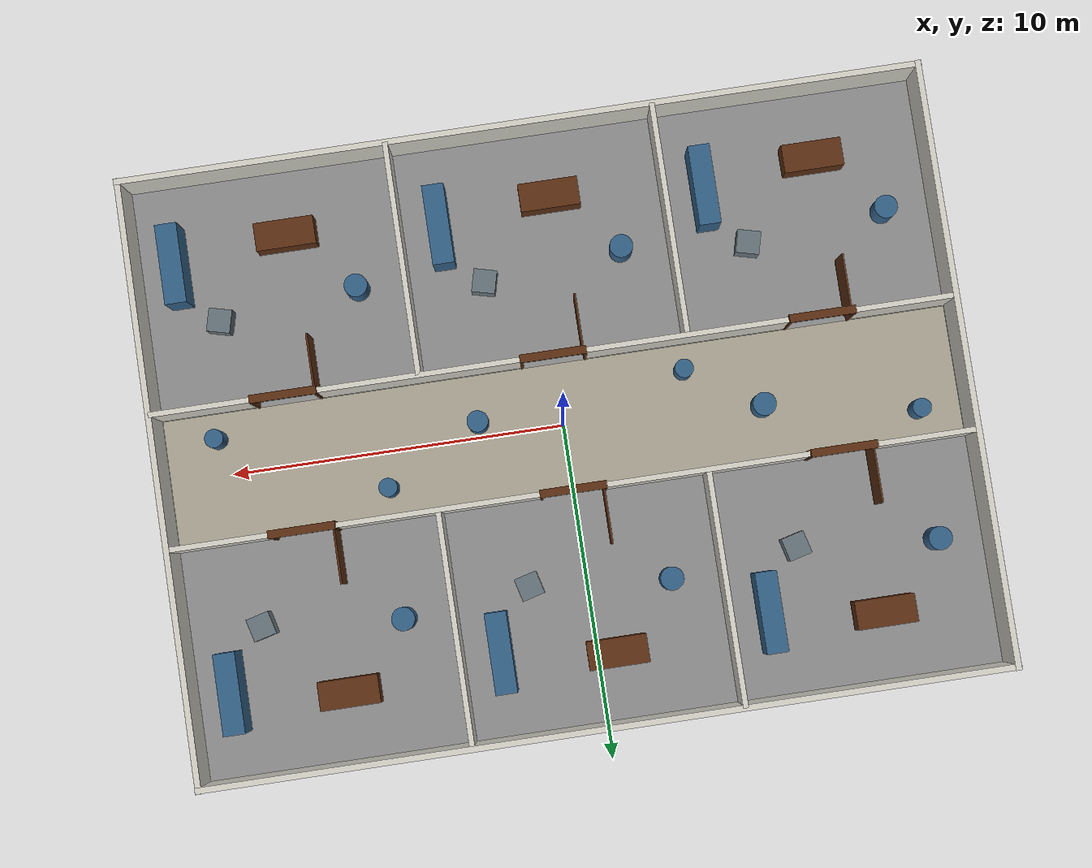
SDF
<?xml version='1.0' encoding='utf-8'?>
<sdf version="1.6">
  <world name="v550_rooms">
    <gravity>0 0 -9.8</gravity>
    <physics type="ode">
      <max_step_size>0.001</max_step_size>
      <real_time_update_rate>1000</real_time_update_rate>
    </physics>
    <scene>
      <ambient>0.65 0.65 0.65 1</ambient>
      <background>0.70 0.73 0.77 1</background>
      <shadows>false</shadows>
    </scene>
    <light name="sun" type="directional">
      <pose>0 0 15 0 0 0</pose>
      <diffuse>0.8 0.8 0.8 1</diffuse>
      <direction>-0.3 0.2 -1</direction>
      <cast_shadows>false</cast_shadows>
    </light>
    <gui>
      <camera name="user_camera">
        <pose>0 0 36 0 1.5707963267948966 1.5707963267948966</pose>
        <view_controller>orbit</view_controller>
      </camera>
    </gui>
    <model name="floor">
      <static>true</static>
      <pose>0 0 -0.05 0 0 0.0</pose>
      <link name="link">
        <collision name="collision">
          <geometry>
            <box>
              <size>24.4 18.4 0.1</size>
            </box>
          </geometry>
        </collision>
        <visual name="visual">
          <geometry>
            <box>
              <size>24.4 18.4 0.1</size>
            </box>
          </geometry>
          <material>
            <ambient>0.55 0.55 0.55 1</ambient>
            <diffuse>0.55 0.55 0.55 1</diffuse>
          </material>
        </visual>
      </link>
    </model>
    <model name="corridor_floor_marking">
      <static>true</static>
      <pose>0 0 0.001 0 0 0.0</pose>
      <link name="link">
        <visual name="visual">
          <geometry>
            <box>
              <size>23.8 3.8 0.002</size>
            </box>
          </geometry>
          <material>
            <ambient>0.66 0.64 0.57 1</ambient>
            <diffuse>0.66 0.64 0.57 1</diffuse>
          </material>
        </visual>
      </link>
    </model>
    <model name="outer_north">
      <static>true</static>
      <pose>0 9 0.75 0 0 0.0</pose>
      <link name="link">
        <collision name="collision">
          <geometry>
            <box>
              <size>24.2 0.18 1.5</size>
            </box>
          </geometry>
        </collision>
        <visual name="visual">
          <geometry>
            <box>
              <size>24.2 0.18 1.5</size>
            </box>
          </geometry>
          <material>
            <ambient>0.83 0.82 0.78 1</ambient>
            <diffuse>0.83 0.82 0.78 1</diffuse>
          </material>
        </visual>
      </link>
    </model>
    <model name="outer_south">
      <static>true</static>
      <pose>0 -9 0.75 0 0 0.0</pose>
      <link name="link">
        <collision name="collision">
          <geometry>
            <box>
              <size>24.2 0.18 1.5</size>
            </box>
          </geometry>
        </collision>
        <visual name="visual">
          <geometry>
            <box>
              <size>24.2 0.18 1.5</size>
            </box>
          </geometry>
          <material>
            <ambient>0.83 0.82 0.78 1</ambient>
            <diffuse>0.83 0.82 0.78 1</diffuse>
          </material>
        </visual>
      </link>
    </model>
    <model name="outer_west">
      <static>true</static>
      <pose>-12 0 0.75 0 0 0.0</pose>
      <link name="link">
        <collision name="collision">
          <geometry>
            <box>
              <size>0.18 18.2 1.5</size>
            </box>
          </geometry>
        </collision>
        <visual name="visual">
          <geometry>
            <box>
              <size>0.18 18.2 1.5</size>
            </box>
          </geometry>
          <material>
            <ambient>0.83 0.82 0.78 1</ambient>
            <diffuse>0.83 0.82 0.78 1</diffuse>
          </material>
        </visual>
      </link>
    </model>
    <model name="outer_east">
      <static>true</static>
      <pose>12 0 0.75 0 0 0.0</pose>
      <link name="link">
        <collision name="collision">
          <geometry>
            <box>
              <size>0.18 18.2 1.5</size>
            </box>
          </geometry>
        </collision>
        <visual name="visual">
          <geometry>
            <box>
              <size>0.18 18.2 1.5</size>
            </box>
          </geometry>
          <material>
            <ambient>0.83 0.82 0.78 1</ambient>
            <diffuse>0.83 0.82 0.78 1</diffuse>
          </material>
        </visual>
      </link>
    </model>
    <model name="north_front_0">
      <static>true</static>
      <pose>-10.475 2 0.75 0 0 0.0</pose>
      <link name="link">
        <collision name="collision">
          <geometry>
            <box>
              <size>3.0500000000000007 0.16 1.5</size>
            </box>
          </geometry>
        </collision>
        <visual name="visual">
          <geometry>
            <box>
              <size>3.0500000000000007 0.16 1.5</size>
            </box>
          </geometry>
          <material>
            <ambient>0.83 0.82 0.78 1</ambient>
            <diffuse>0.83 0.82 0.78 1</diffuse>
          </material>
        </visual>
      </link>
    </model>
    <model name="north_front_1">
      <static>true</static>
      <pose>-4.0 2 0.75 0 0 0.0</pose>
      <link name="link">
        <collision name="collision">
          <geometry>
            <box>
              <size>6.1 0.16 1.5</size>
            </box>
          </geometry>
        </collision>
        <visual name="visual">
          <geometry>
            <box>
              <size>6.1 0.16 1.5</size>
            </box>
          </geometry>
          <material>
            <ambient>0.83 0.82 0.78 1</ambient>
            <diffuse>0.83 0.82 0.78 1</diffuse>
          </material>
        </visual>
      </link>
    </model>
    <model name="north_front_2">
      <static>true</static>
      <pose>4.0 2 0.75 0 0 0.0</pose>
      <link name="link">
        <collision name="collision">
          <geometry>
            <box>
              <size>6.1 0.16 1.5</size>
            </box>
          </geometry>
        </collision>
        <visual name="visual">
          <geometry>
            <box>
              <size>6.1 0.16 1.5</size>
            </box>
          </geometry>
          <material>
            <ambient>0.83 0.82 0.78 1</ambient>
            <diffuse>0.83 0.82 0.78 1</diffuse>
          </material>
        </visual>
      </link>
    </model>
    <model name="north_front_3">
      <static>true</static>
      <pose>10.475 2 0.75 0 0 0.0</pose>
      <link name="link">
        <collision name="collision">
          <geometry>
            <box>
              <size>3.0500000000000007 0.16 1.5</size>
            </box>
          </geometry>
        </collision>
        <visual name="visual">
          <geometry>
            <box>
              <size>3.0500000000000007 0.16 1.5</size>
            </box>
          </geometry>
          <material>
            <ambient>0.83 0.82 0.78 1</ambient>
            <diffuse>0.83 0.82 0.78 1</diffuse>
          </material>
        </visual>
      </link>
    </model>
    <model name="north_partition_-4">
      <static>true</static>
      <pose>-4 5.5 0.75 0 0 0.0</pose>
      <link name="link">
        <collision name="collision">
          <geometry>
            <box>
              <size>0.16 7 1.5</size>
            </box>
          </geometry>
        </collision>
        <visual name="visual">
          <geometry>
            <box>
              <size>0.16 7 1.5</size>
            </box>
          </geometry>
          <material>
            <ambient>0.83 0.82 0.78 1</ambient>
            <diffuse>0.83 0.82 0.78 1</diffuse>
          </material>
        </visual>
      </link>
    </model>
    <model name="north_partition_4">
      <static>true</static>
      <pose>4 5.5 0.75 0 0 0.0</pose>
      <link name="link">
        <collision name="collision">
          <geometry>
            <box>
              <size>0.16 7 1.5</size>
            </box>
          </geometry>
        </collision>
        <visual name="visual">
          <geometry>
            <box>
              <size>0.16 7 1.5</size>
            </box>
          </geometry>
          <material>
            <ambient>0.83 0.82 0.78 1</ambient>
            <diffuse>0.83 0.82 0.78 1</diffuse>
          </material>
        </visual>
      </link>
    </model>
    <model name="north_door_0_open_leaf">
      <static>true</static>
      <pose>-8.9 2.88 0.675 0 0 0.0</pose>
      <link name="link">
        <collision name="collision">
          <geometry>
            <box>
              <size>0.055 1.7 1.35</size>
            </box>
          </geometry>
        </collision>
        <visual name="visual">
          <geometry>
            <box>
              <size>0.055 1.7 1.35</size>
            </box>
          </geometry>
          <material>
            <ambient>0.36 0.18 0.07 1</ambient>
            <diffuse>0.36 0.18 0.07 1</diffuse>
          </material>
        </visual>
      </link>
    </model>
    <model name="north_door_0_jamb_0">
      <static>true</static>
      <pose>-8.95 2 0.8 0 0 0.0</pose>
      <link name="link">
        <collision name="collision">
          <geometry>
            <box>
              <size>0.08 0.24 1.6</size>
            </box>
          </geometry>
        </collision>
        <visual name="visual">
          <geometry>
            <box>
              <size>0.08 0.24 1.6</size>
            </box>
          </geometry>
          <material>
            <ambient>0.36 0.18 0.07 1</ambient>
            <diffuse>0.36 0.18 0.07 1</diffuse>
          </material>
        </visual>
      </link>
    </model>
    <model name="north_door_0_jamb_1">
      <static>true</static>
      <pose>-7.05 2 0.8 0 0 0.0</pose>
      <link name="link">
        <collision name="collision">
          <geometry>
            <box>
              <size>0.08 0.24 1.6</size>
            </box>
          </geometry>
        </collision>
        <visual name="visual">
          <geometry>
            <box>
              <size>0.08 0.24 1.6</size>
            </box>
          </geometry>
          <material>
            <ambient>0.36 0.18 0.07 1</ambient>
            <diffuse>0.36 0.18 0.07 1</diffuse>
          </material>
        </visual>
      </link>
    </model>
    <model name="north_door_0_lintel">
      <static>true</static>
      <pose>-8 2 1.6 0 0 0.0</pose>
      <link name="link">
        <collision name="collision">
          <geometry>
            <box>
              <size>1.98 0.24 0.12</size>
            </box>
          </geometry>
        </collision>
        <visual name="visual">
          <geometry>
            <box>
              <size>1.98 0.24 0.12</size>
            </box>
          </geometry>
          <material>
            <ambient>0.36 0.18 0.07 1</ambient>
            <diffuse>0.36 0.18 0.07 1</diffuse>
          </material>
        </visual>
      </link>
    </model>
    <model name="north_room_0_cabinet">
      <static>true</static>
      <pose>-5.2 6.4 0.625 0 0 0.0</pose>
      <link name="link">
        <collision name="collision">
          <geometry>
            <box>
              <size>0.65 2.4 1.25</size>
            </box>
          </geometry>
        </collision>
        <visual name="visual">
          <geometry>
            <box>
              <size>0.65 2.4 1.25</size>
            </box>
          </geometry>
          <material>
            <ambient>0.20 0.38 0.53 1</ambient>
            <diffuse>0.20 0.38 0.53 1</diffuse>
          </material>
        </visual>
      </link>
    </model>
    <model name="north_room_0_desk">
      <static>true</static>
      <pose>-8.6 6.9 0.375 0 0 0.0</pose>
      <link name="link">
        <collision name="collision">
          <geometry>
            <box>
              <size>1.8 0.85 0.75</size>
            </box>
          </geometry>
        </collision>
        <visual name="visual">
          <geometry>
            <box>
              <size>1.8 0.85 0.75</size>
            </box>
          </geometry>
          <material>
            <ambient>0.36 0.18 0.07 1</ambient>
            <diffuse>0.36 0.18 0.07 1</diffuse>
          </material>
        </visual>
      </link>
    </model>
    <model name="north_room_0_crate">
      <static>true</static>
      <pose>-6.3 4.6 0.325 0 0 0.25</pose>
      <link name="link">
        <collision name="collision">
          <geometry>
            <box>
              <size>0.7 0.7 0.65</size>
            </box>
          </geometry>
        </collision>
        <visual name="visual">
          <geometry>
            <box>
              <size>0.7 0.7 0.65</size>
            </box>
          </geometry>
          <material>
            <ambient>0.40 0.45 0.48 1</ambient>
            <diffuse>0.40 0.45 0.48 1</diffuse>
          </material>
        </visual>
      </link>
    </model>
    <model name="north_room_0_barrel">
      <static>true</static>
      <pose>-10.5 5.0 0.45 0 0 0.0</pose>
      <link name="link">
        <collision name="collision">
          <geometry>
            <cylinder>
              <radius>0.35</radius>
              <length>0.9</length>
            </cylinder>
          </geometry>
        </collision>
        <visual name="visual">
          <geometry>
            <cylinder>
              <radius>0.35</radius>
              <length>0.9</length>
            </cylinder>
          </geometry>
          <material>
            <ambient>0.20 0.38 0.53 1</ambient>
            <diffuse>0.20 0.38 0.53 1</diffuse>
          </material>
        </visual>
      </link>
    </model>
    <model name="north_door_1_open_leaf">
      <static>true</static>
      <pose>-0.9 2.88 0.675 0 0 0.0</pose>
      <link name="link">
        <collision name="collision">
          <geometry>
            <box>
              <size>0.055 1.7 1.35</size>
            </box>
          </geometry>
        </collision>
        <visual name="visual">
          <geometry>
            <box>
              <size>0.055 1.7 1.35</size>
            </box>
          </geometry>
          <material>
            <ambient>0.36 0.18 0.07 1</ambient>
            <diffuse>0.36 0.18 0.07 1</diffuse>
          </material>
        </visual>
      </link>
    </model>
    <model name="north_door_1_jamb_0">
      <static>true</static>
      <pose>-0.95 2 0.8 0 0 0.0</pose>
      <link name="link">
        <collision name="collision">
          <geometry>
            <box>
              <size>0.08 0.24 1.6</size>
            </box>
          </geometry>
        </collision>
        <visual name="visual">
          <geometry>
            <box>
              <size>0.08 0.24 1.6</size>
            </box>
          </geometry>
          <material>
            <ambient>0.36 0.18 0.07 1</ambient>
            <diffuse>0.36 0.18 0.07 1</diffuse>
          </material>
        </visual>
      </link>
    </model>
    <model name="north_door_1_jamb_1">
      <static>true</static>
      <pose>0.95 2 0.8 0 0 0.0</pose>
      <link name="link">
        <collision name="collision">
          <geometry>
            <box>
              <size>0.08 0.24 1.6</size>
            </box>
          </geometry>
        </collision>
        <visual name="visual">
          <geometry>
            <box>
              <size>0.08 0.24 1.6</size>
            </box>
          </geometry>
          <material>
            <ambient>0.36 0.18 0.07 1</ambient>
            <diffuse>0.36 0.18 0.07 1</diffuse>
          </material>
        </visual>
      </link>
    </model>
    <model name="north_door_1_lintel">
      <static>true</static>
      <pose>0 2 1.6 0 0 0.0</pose>
      <link name="link">
        <collision name="collision">
          <geometry>
            <box>
              <size>1.98 0.24 0.12</size>
            </box>
          </geometry>
        </collision>
        <visual name="visual">
          <geometry>
            <box>
              <size>1.98 0.24 0.12</size>
            </box>
          </geometry>
          <material>
            <ambient>0.36 0.18 0.07 1</ambient>
            <diffuse>0.36 0.18 0.07 1</diffuse>
          </material>
        </visual>
      </link>
    </model>
    <model name="north_room_1_cabinet">
      <static>true</static>
      <pose>2.8 6.4 0.625 0 0 0.0</pose>
      <link name="link">
        <collision name="collision">
          <geometry>
            <box>
              <size>0.65 2.4 1.25</size>
            </box>
          </geometry>
        </collision>
        <visual name="visual">
          <geometry>
            <box>
              <size>0.65 2.4 1.25</size>
            </box>
          </geometry>
          <material>
            <ambient>0.20 0.38 0.53 1</ambient>
            <diffuse>0.20 0.38 0.53 1</diffuse>
          </material>
        </visual>
      </link>
    </model>
    <model name="north_room_1_desk">
      <static>true</static>
      <pose>-0.6 6.9 0.375 0 0 0.0</pose>
      <link name="link">
        <collision name="collision">
          <geometry>
            <box>
              <size>1.8 0.85 0.75</size>
            </box>
          </geometry>
        </collision>
        <visual name="visual">
          <geometry>
            <box>
              <size>1.8 0.85 0.75</size>
            </box>
          </geometry>
          <material>
            <ambient>0.36 0.18 0.07 1</ambient>
            <diffuse>0.36 0.18 0.07 1</diffuse>
          </material>
        </visual>
      </link>
    </model>
    <model name="north_room_1_crate">
      <static>true</static>
      <pose>1.7 4.6 0.325 0 0 0.25</pose>
      <link name="link">
        <collision name="collision">
          <geometry>
            <box>
              <size>0.7 0.7 0.65</size>
            </box>
          </geometry>
        </collision>
        <visual name="visual">
          <geometry>
            <box>
              <size>0.7 0.7 0.65</size>
            </box>
          </geometry>
          <material>
            <ambient>0.40 0.45 0.48 1</ambient>
            <diffuse>0.40 0.45 0.48 1</diffuse>
          </material>
        </visual>
      </link>
    </model>
    <model name="north_room_1_barrel">
      <static>true</static>
      <pose>-2.5 5.0 0.45 0 0 0.0</pose>
      <link name="link">
        <collision name="collision">
          <geometry>
            <cylinder>
              <radius>0.35</radius>
              <length>0.9</length>
            </cylinder>
          </geometry>
        </collision>
        <visual name="visual">
          <geometry>
            <cylinder>
              <radius>0.35</radius>
              <length>0.9</length>
            </cylinder>
          </geometry>
          <material>
            <ambient>0.20 0.38 0.53 1</ambient>
            <diffuse>0.20 0.38 0.53 1</diffuse>
          </material>
        </visual>
      </link>
    </model>
    <model name="north_door_2_open_leaf">
      <static>true</static>
      <pose>7.1 2.88 0.675 0 0 0.0</pose>
      <link name="link">
        <collision name="collision">
          <geometry>
            <box>
              <size>0.055 1.7 1.35</size>
            </box>
          </geometry>
        </collision>
        <visual name="visual">
          <geometry>
            <box>
              <size>0.055 1.7 1.35</size>
            </box>
          </geometry>
          <material>
            <ambient>0.36 0.18 0.07 1</ambient>
            <diffuse>0.36 0.18 0.07 1</diffuse>
          </material>
        </visual>
      </link>
    </model>
    <model name="north_door_2_jamb_0">
      <static>true</static>
      <pose>7.05 2 0.8 0 0 0.0</pose>
      <link name="link">
        <collision name="collision">
          <geometry>
            <box>
              <size>0.08 0.24 1.6</size>
            </box>
          </geometry>
        </collision>
        <visual name="visual">
          <geometry>
            <box>
              <size>0.08 0.24 1.6</size>
            </box>
          </geometry>
          <material>
            <ambient>0.36 0.18 0.07 1</ambient>
            <diffuse>0.36 0.18 0.07 1</diffuse>
          </material>
        </visual>
      </link>
    </model>
    <model name="north_door_2_jamb_1">
      <static>true</static>
      <pose>8.95 2 0.8 0 0 0.0</pose>
      <link name="link">
        <collision name="collision">
          <geometry>
            <box>
              <size>0.08 0.24 1.6</size>
            </box>
          </geometry>
        </collision>
        <visual name="visual">
          <geometry>
            <box>
              <size>0.08 0.24 1.6</size>
            </box>
          </geometry>
          <material>
            <ambient>0.36 0.18 0.07 1</ambient>
            <diffuse>0.36 0.18 0.07 1</diffuse>
          </material>
        </visual>
      </link>
    </model>
    <model name="north_door_2_lintel">
      <static>true</static>
      <pose>8 2 1.6 0 0 0.0</pose>
      <link name="link">
        <collision name="collision">
          <geometry>
            <box>
              <size>1.98 0.24 0.12</size>
            </box>
          </geometry>
        </collision>
        <visual name="visual">
          <geometry>
            <box>
              <size>1.98 0.24 0.12</size>
            </box>
          </geometry>
          <material>
            <ambient>0.36 0.18 0.07 1</ambient>
            <diffuse>0.36 0.18 0.07 1</diffuse>
          </material>
        </visual>
      </link>
    </model>
    <model name="north_room_2_cabinet">
      <static>true</static>
      <pose>10.8 6.4 0.625 0 0 0.0</pose>
      <link name="link">
        <collision name="collision">
          <geometry>
            <box>
              <size>0.65 2.4 1.25</size>
            </box>
          </geometry>
        </collision>
        <visual name="visual">
          <geometry>
            <box>
              <size>0.65 2.4 1.25</size>
            </box>
          </geometry>
          <material>
            <ambient>0.20 0.38 0.53 1</ambient>
            <diffuse>0.20 0.38 0.53 1</diffuse>
          </material>
        </visual>
      </link>
    </model>
    <model name="north_room_2_desk">
      <static>true</static>
      <pose>7.4 6.9 0.375 0 0 0.0</pose>
      <link name="link">
        <collision name="collision">
          <geometry>
            <box>
              <size>1.8 0.85 0.75</size>
            </box>
          </geometry>
        </collision>
        <visual name="visual">
          <geometry>
            <box>
              <size>1.8 0.85 0.75</size>
            </box>
          </geometry>
          <material>
            <ambient>0.36 0.18 0.07 1</ambient>
            <diffuse>0.36 0.18 0.07 1</diffuse>
          </material>
        </visual>
      </link>
    </model>
    <model name="north_room_2_crate">
      <static>true</static>
      <pose>9.7 4.6 0.325 0 0 0.25</pose>
      <link name="link">
        <collision name="collision">
          <geometry>
            <box>
              <size>0.7 0.7 0.65</size>
            </box>
          </geometry>
        </collision>
        <visual name="visual">
          <geometry>
            <box>
              <size>0.7 0.7 0.65</size>
            </box>
          </geometry>
          <material>
            <ambient>0.40 0.45 0.48 1</ambient>
            <diffuse>0.40 0.45 0.48 1</diffuse>
          </material>
        </visual>
      </link>
    </model>
    <model name="north_room_2_barrel">
      <static>true</static>
      <pose>5.5 5.0 0.45 0 0 0.0</pose>
      <link name="link">
        <collision name="collision">
          <geometry>
            <cylinder>
              <radius>0.35</radius>
              <length>0.9</length>
            </cylinder>
          </geometry>
        </collision>
        <visual name="visual">
          <geometry>
            <cylinder>
              <radius>0.35</radius>
              <length>0.9</length>
            </cylinder>
          </geometry>
          <material>
            <ambient>0.20 0.38 0.53 1</ambient>
            <diffuse>0.20 0.38 0.53 1</diffuse>
          </material>
        </visual>
      </link>
    </model>
    <model name="south_front_0">
      <static>true</static>
      <pose>-10.475 -2 0.75 0 0 0.0</pose>
      <link name="link">
        <collision name="collision">
          <geometry>
            <box>
              <size>3.0500000000000007 0.16 1.5</size>
            </box>
          </geometry>
        </collision>
        <visual name="visual">
          <geometry>
            <box>
              <size>3.0500000000000007 0.16 1.5</size>
            </box>
          </geometry>
          <material>
            <ambient>0.83 0.82 0.78 1</ambient>
            <diffuse>0.83 0.82 0.78 1</diffuse>
          </material>
        </visual>
      </link>
    </model>
    <model name="south_front_1">
      <static>true</static>
      <pose>-4.0 -2 0.75 0 0 0.0</pose>
      <link name="link">
        <collision name="collision">
          <geometry>
            <box>
              <size>6.1 0.16 1.5</size>
            </box>
          </geometry>
        </collision>
        <visual name="visual">
          <geometry>
            <box>
              <size>6.1 0.16 1.5</size>
            </box>
          </geometry>
          <material>
            <ambient>0.83 0.82 0.78 1</ambient>
            <diffuse>0.83 0.82 0.78 1</diffuse>
          </material>
        </visual>
      </link>
    </model>
    <model name="south_front_2">
      <static>true</static>
      <pose>4.0 -2 0.75 0 0 0.0</pose>
      <link name="link">
        <collision name="collision">
          <geometry>
            <box>
              <size>6.1 0.16 1.5</size>
            </box>
          </geometry>
        </collision>
        <visual name="visual">
          <geometry>
            <box>
              <size>6.1 0.16 1.5</size>
            </box>
          </geometry>
          <material>
            <ambient>0.83 0.82 0.78 1</ambient>
            <diffuse>0.83 0.82 0.78 1</diffuse>
          </material>
        </visual>
      </link>
    </model>
    <model name="south_front_3">
      <static>true</static>
      <pose>10.475 -2 0.75 0 0 0.0</pose>
      <link name="link">
        <collision name="collision">
          <geometry>
            <box>
              <size>3.0500000000000007 0.16 1.5</size>
            </box>
          </geometry>
        </collision>
        <visual name="visual">
          <geometry>
            <box>
              <size>3.0500000000000007 0.16 1.5</size>
            </box>
          </geometry>
          <material>
            <ambient>0.83 0.82 0.78 1</ambient>
            <diffuse>0.83 0.82 0.78 1</diffuse>
          </material>
        </visual>
      </link>
    </model>
    <model name="south_partition_-4">
      <static>true</static>
      <pose>-4 -5.5 0.75 0 0 0.0</pose>
      <link name="link">
        <collision name="collision">
          <geometry>
            <box>
              <size>0.16 7 1.5</size>
            </box>
          </geometry>
        </collision>
        <visual name="visual">
          <geometry>
            <box>
              <size>0.16 7 1.5</size>
            </box>
          </geometry>
          <material>
            <ambient>0.83 0.82 0.78 1</ambient>
            <diffuse>0.83 0.82 0.78 1</diffuse>
          </material>
        </visual>
      </link>
    </model>
    <model name="south_partition_4">
      <static>true</static>
      <pose>4 -5.5 0.75 0 0 0.0</pose>
      <link name="link">
        <collision name="collision">
          <geometry>
            <box>
              <size>0.16 7 1.5</size>
            </box>
          </geometry>
        </collision>
        <visual name="visual">
          <geometry>
            <box>
              <size>0.16 7 1.5</size>
            </box>
          </geometry>
          <material>
            <ambient>0.83 0.82 0.78 1</ambient>
            <diffuse>0.83 0.82 0.78 1</diffuse>
          </material>
        </visual>
      </link>
    </model>
    <model name="south_door_0_open_leaf">
      <static>true</static>
      <pose>-8.9 -2.88 0.675 0 0 0.0</pose>
      <link name="link">
        <collision name="collision">
          <geometry>
            <box>
              <size>0.055 1.7 1.35</size>
            </box>
          </geometry>
        </collision>
        <visual name="visual">
          <geometry>
            <box>
              <size>0.055 1.7 1.35</size>
            </box>
          </geometry>
          <material>
            <ambient>0.36 0.18 0.07 1</ambient>
            <diffuse>0.36 0.18 0.07 1</diffuse>
          </material>
        </visual>
      </link>
    </model>
    <model name="south_door_0_jamb_0">
      <static>true</static>
      <pose>-8.95 -2 0.8 0 0 0.0</pose>
      <link name="link">
        <collision name="collision">
          <geometry>
            <box>
              <size>0.08 0.24 1.6</size>
            </box>
          </geometry>
        </collision>
        <visual name="visual">
          <geometry>
            <box>
              <size>0.08 0.24 1.6</size>
            </box>
          </geometry>
          <material>
            <ambient>0.36 0.18 0.07 1</ambient>
            <diffuse>0.36 0.18 0.07 1</diffuse>
          </material>
        </visual>
      </link>
    </model>
    <model name="south_door_0_jamb_1">
      <static>true</static>
      <pose>-7.05 -2 0.8 0 0 0.0</pose>
      <link name="link">
        <collision name="collision">
          <geometry>
            <box>
              <size>0.08 0.24 1.6</size>
            </box>
          </geometry>
        </collision>
        <visual name="visual">
          <geometry>
            <box>
              <size>0.08 0.24 1.6</size>
            </box>
          </geometry>
          <material>
            <ambient>0.36 0.18 0.07 1</ambient>
            <diffuse>0.36 0.18 0.07 1</diffuse>
          </material>
        </visual>
      </link>
    </model>
    <model name="south_door_0_lintel">
      <static>true</static>
      <pose>-8 -2 1.6 0 0 0.0</pose>
      <link name="link">
        <collision name="collision">
          <geometry>
            <box>
              <size>1.98 0.24 0.12</size>
            </box>
          </geometry>
        </collision>
        <visual name="visual">
          <geometry>
            <box>
              <size>1.98 0.24 0.12</size>
            </box>
          </geometry>
          <material>
            <ambient>0.36 0.18 0.07 1</ambient>
            <diffuse>0.36 0.18 0.07 1</diffuse>
          </material>
        </visual>
      </link>
    </model>
    <model name="south_room_0_cabinet">
      <static>true</static>
      <pose>-5.2 -6.4 0.625 0 0 0.0</pose>
      <link name="link">
        <collision name="collision">
          <geometry>
            <box>
              <size>0.65 2.4 1.25</size>
            </box>
          </geometry>
        </collision>
        <visual name="visual">
          <geometry>
            <box>
              <size>0.65 2.4 1.25</size>
            </box>
          </geometry>
          <material>
            <ambient>0.20 0.38 0.53 1</ambient>
            <diffuse>0.20 0.38 0.53 1</diffuse>
          </material>
        </visual>
      </link>
    </model>
    <model name="south_room_0_desk">
      <static>true</static>
      <pose>-8.6 -6.9 0.375 0 0 0.0</pose>
      <link name="link">
        <collision name="collision">
          <geometry>
            <box>
              <size>1.8 0.85 0.75</size>
            </box>
          </geometry>
        </collision>
        <visual name="visual">
          <geometry>
            <box>
              <size>1.8 0.85 0.75</size>
            </box>
          </geometry>
          <material>
            <ambient>0.36 0.18 0.07 1</ambient>
            <diffuse>0.36 0.18 0.07 1</diffuse>
          </material>
        </visual>
      </link>
    </model>
    <model name="south_room_0_crate">
      <static>true</static>
      <pose>-6.3 -4.6 0.325 0 0 -0.25</pose>
      <link name="link">
        <collision name="collision">
          <geometry>
            <box>
              <size>0.7 0.7 0.65</size>
            </box>
          </geometry>
        </collision>
        <visual name="visual">
          <geometry>
            <box>
              <size>0.7 0.7 0.65</size>
            </box>
          </geometry>
          <material>
            <ambient>0.40 0.45 0.48 1</ambient>
            <diffuse>0.40 0.45 0.48 1</diffuse>
          </material>
        </visual>
      </link>
    </model>
    <model name="south_room_0_barrel">
      <static>true</static>
      <pose>-10.5 -5.0 0.45 0 0 0.0</pose>
      <link name="link">
        <collision name="collision">
          <geometry>
            <cylinder>
              <radius>0.35</radius>
              <length>0.9</length>
            </cylinder>
          </geometry>
        </collision>
        <visual name="visual">
          <geometry>
            <cylinder>
              <radius>0.35</radius>
              <length>0.9</length>
            </cylinder>
          </geometry>
          <material>
            <ambient>0.20 0.38 0.53 1</ambient>
            <diffuse>0.20 0.38 0.53 1</diffuse>
          </material>
        </visual>
      </link>
    </model>
    <model name="south_door_1_open_leaf">
      <static>true</static>
      <pose>-0.9 -2.88 0.675 0 0 0.0</pose>
      <link name="link">
        <collision name="collision">
          <geometry>
            <box>
              <size>0.055 1.7 1.35</size>
            </box>
          </geometry>
        </collision>
        <visual name="visual">
          <geometry>
            <box>
              <size>0.055 1.7 1.35</size>
            </box>
          </geometry>
          <material>
            <ambient>0.36 0.18 0.07 1</ambient>
            <diffuse>0.36 0.18 0.07 1</diffuse>
          </material>
        </visual>
      </link>
    </model>
    <model name="south_door_1_jamb_0">
      <static>true</static>
      <pose>-0.95 -2 0.8 0 0 0.0</pose>
      <link name="link">
        <collision name="collision">
          <geometry>
            <box>
              <size>0.08 0.24 1.6</size>
            </box>
          </geometry>
        </collision>
        <visual name="visual">
          <geometry>
            <box>
              <size>0.08 0.24 1.6</size>
            </box>
          </geometry>
          <material>
            <ambient>0.36 0.18 0.07 1</ambient>
            <diffuse>0.36 0.18 0.07 1</diffuse>
          </material>
        </visual>
      </link>
    </model>
    <model name="south_door_1_jamb_1">
      <static>true</static>
      <pose>0.95 -2 0.8 0 0 0.0</pose>
      <link name="link">
        <collision name="collision">
          <geometry>
            <box>
              <size>0.08 0.24 1.6</size>
            </box>
          </geometry>
        </collision>
        <visual name="visual">
          <geometry>
            <box>
              <size>0.08 0.24 1.6</size>
            </box>
          </geometry>
          <material>
            <ambient>0.36 0.18 0.07 1</ambient>
            <diffuse>0.36 0.18 0.07 1</diffuse>
          </material>
        </visual>
      </link>
    </model>
    <model name="south_door_1_lintel">
      <static>true</static>
      <pose>0 -2 1.6 0 0 0.0</pose>
      <link name="link">
        <collision name="collision">
          <geometry>
            <box>
              <size>1.98 0.24 0.12</size>
            </box>
          </geometry>
        </collision>
        <visual name="visual">
          <geometry>
            <box>
              <size>1.98 0.24 0.12</size>
            </box>
          </geometry>
          <material>
            <ambient>0.36 0.18 0.07 1</ambient>
            <diffuse>0.36 0.18 0.07 1</diffuse>
          </material>
        </visual>
      </link>
    </model>
    <model name="south_room_1_cabinet">
      <static>true</static>
      <pose>2.8 -6.4 0.625 0 0 0.0</pose>
      <link name="link">
        <collision name="collision">
          <geometry>
            <box>
              <size>0.65 2.4 1.25</size>
            </box>
          </geometry>
        </collision>
        <visual name="visual">
          <geometry>
            <box>
              <size>0.65 2.4 1.25</size>
            </box>
          </geometry>
          <material>
            <ambient>0.20 0.38 0.53 1</ambient>
            <diffuse>0.20 0.38 0.53 1</diffuse>
          </material>
        </visual>
      </link>
    </model>
    <model name="south_room_1_desk">
      <static>true</static>
      <pose>-0.6 -6.9 0.375 0 0 0.0</pose>
      <link name="link">
        <collision name="collision">
          <geometry>
            <box>
              <size>1.8 0.85 0.75</size>
            </box>
          </geometry>
        </collision>
        <visual name="visual">
          <geometry>
            <box>
              <size>1.8 0.85 0.75</size>
            </box>
          </geometry>
          <material>
            <ambient>0.36 0.18 0.07 1</ambient>
            <diffuse>0.36 0.18 0.07 1</diffuse>
          </material>
        </visual>
      </link>
    </model>
    <model name="south_room_1_crate">
      <static>true</static>
      <pose>1.7 -4.6 0.325 0 0 -0.25</pose>
      <link name="link">
        <collision name="collision">
          <geometry>
            <box>
              <size>0.7 0.7 0.65</size>
            </box>
          </geometry>
        </collision>
        <visual name="visual">
          <geometry>
            <box>
              <size>0.7 0.7 0.65</size>
            </box>
          </geometry>
          <material>
            <ambient>0.40 0.45 0.48 1</ambient>
            <diffuse>0.40 0.45 0.48 1</diffuse>
          </material>
        </visual>
      </link>
    </model>
    <model name="south_room_1_barrel">
      <static>true</static>
      <pose>-2.5 -5.0 0.45 0 0 0.0</pose>
      <link name="link">
        <collision name="collision">
          <geometry>
            <cylinder>
              <radius>0.35</radius>
              <length>0.9</length>
            </cylinder>
          </geometry>
        </collision>
        <visual name="visual">
          <geometry>
            <cylinder>
              <radius>0.35</radius>
              <length>0.9</length>
            </cylinder>
          </geometry>
          <material>
            <ambient>0.20 0.38 0.53 1</ambient>
            <diffuse>0.20 0.38 0.53 1</diffuse>
          </material>
        </visual>
      </link>
    </model>
    <model name="south_door_2_open_leaf">
      <static>true</static>
      <pose>7.1 -2.88 0.675 0 0 0.0</pose>
      <link name="link">
        <collision name="collision">
          <geometry>
            <box>
              <size>0.055 1.7 1.35</size>
            </box>
          </geometry>
        </collision>
        <visual name="visual">
          <geometry>
            <box>
              <size>0.055 1.7 1.35</size>
            </box>
          </geometry>
          <material>
            <ambient>0.36 0.18 0.07 1</ambient>
            <diffuse>0.36 0.18 0.07 1</diffuse>
          </material>
        </visual>
      </link>
    </model>
    <model name="south_door_2_jamb_0">
      <static>true</static>
      <pose>7.05 -2 0.8 0 0 0.0</pose>
      <link name="link">
        <collision name="collision">
          <geometry>
            <box>
              <size>0.08 0.24 1.6</size>
            </box>
          </geometry>
        </collision>
        <visual name="visual">
          <geometry>
            <box>
              <size>0.08 0.24 1.6</size>
            </box>
          </geometry>
          <material>
            <ambient>0.36 0.18 0.07 1</ambient>
            <diffuse>0.36 0.18 0.07 1</diffuse>
          </material>
        </visual>
      </link>
    </model>
    <model name="south_door_2_jamb_1">
      <static>true</static>
      <pose>8.95 -2 0.8 0 0 0.0</pose>
      <link name="link">
        <collision name="collision">
          <geometry>
            <box>
              <size>0.08 0.24 1.6</size>
            </box>
          </geometry>
        </collision>
        <visual name="visual">
          <geometry>
            <box>
              <size>0.08 0.24 1.6</size>
            </box>
          </geometry>
          <material>
            <ambient>0.36 0.18 0.07 1</ambient>
            <diffuse>0.36 0.18 0.07 1</diffuse>
          </material>
        </visual>
      </link>
    </model>
    <model name="south_door_2_lintel">
      <static>true</static>
      <pose>8 -2 1.6 0 0 0.0</pose>
      <link name="link">
        <collision name="collision">
          <geometry>
            <box>
              <size>1.98 0.24 0.12</size>
            </box>
          </geometry>
        </collision>
        <visual name="visual">
          <geometry>
            <box>
              <size>1.98 0.24 0.12</size>
            </box>
          </geometry>
          <material>
            <ambient>0.36 0.18 0.07 1</ambient>
            <diffuse>0.36 0.18 0.07 1</diffuse>
          </material>
        </visual>
      </link>
    </model>
    <model name="south_room_2_cabinet">
      <static>true</static>
      <pose>10.8 -6.4 0.625 0 0 0.0</pose>
      <link name="link">
        <collision name="collision">
          <geometry>
            <box>
              <size>0.65 2.4 1.25</size>
            </box>
          </geometry>
        </collision>
        <visual name="visual">
          <geometry>
            <box>
              <size>0.65 2.4 1.25</size>
            </box>
          </geometry>
          <material>
            <ambient>0.20 0.38 0.53 1</ambient>
            <diffuse>0.20 0.38 0.53 1</diffuse>
          </material>
        </visual>
      </link>
    </model>
    <model name="south_room_2_desk">
      <static>true</static>
      <pose>7.4 -6.9 0.375 0 0 0.0</pose>
      <link name="link">
        <collision name="collision">
          <geometry>
            <box>
              <size>1.8 0.85 0.75</size>
            </box>
          </geometry>
        </collision>
        <visual name="visual">
          <geometry>
            <box>
              <size>1.8 0.85 0.75</size>
            </box>
          </geometry>
          <material>
            <ambient>0.36 0.18 0.07 1</ambient>
            <diffuse>0.36 0.18 0.07 1</diffuse>
          </material>
        </visual>
      </link>
    </model>
    <model name="south_room_2_crate">
      <static>true</static>
      <pose>9.7 -4.6 0.325 0 0 -0.25</pose>
      <link name="link">
        <collision name="collision">
          <geometry>
            <box>
              <size>0.7 0.7 0.65</size>
            </box>
          </geometry>
        </collision>
        <visual name="visual">
          <geometry>
            <box>
              <size>0.7 0.7 0.65</size>
            </box>
          </geometry>
          <material>
            <ambient>0.40 0.45 0.48 1</ambient>
            <diffuse>0.40 0.45 0.48 1</diffuse>
          </material>
        </visual>
      </link>
    </model>
    <model name="south_room_2_barrel">
      <static>true</static>
      <pose>5.5 -5.0 0.45 0 0 0.0</pose>
      <link name="link">
        <collision name="collision">
          <geometry>
            <cylinder>
              <radius>0.35</radius>
              <length>0.9</length>
            </cylinder>
          </geometry>
        </collision>
        <visual name="visual">
          <geometry>
            <cylinder>
              <radius>0.35</radius>
              <length>0.9</length>
            </cylinder>
          </geometry>
          <material>
            <ambient>0.20 0.38 0.53 1</ambient>
            <diffuse>0.20 0.38 0.53 1</diffuse>
          </material>
        </visual>
      </link>
    </model>
    <model name="corridor_barrel_0">
      <static>true</static>
      <pose>-6 0.3 0.425 0 0 0.0</pose>
      <link name="link">
        <collision name="collision">
          <geometry>
            <cylinder>
              <radius>0.35</radius>
              <length>0.85</length>
            </cylinder>
          </geometry>
        </collision>
        <visual name="visual">
          <geometry>
            <cylinder>
              <radius>0.35</radius>
              <length>0.85</length>
            </cylinder>
          </geometry>
          <material>
            <ambient>0.20 0.38 0.53 1</ambient>
            <diffuse>0.20 0.38 0.53 1</diffuse>
          </material>
        </visual>
      </link>
    </model>
    <model name="corridor_barrel_1">
      <static>true</static>
      <pose>2.5 -0.45 0.425 0 0 0.0</pose>
      <link name="link">
        <collision name="collision">
          <geometry>
            <cylinder>
              <radius>0.32</radius>
              <length>0.85</length>
            </cylinder>
          </geometry>
        </collision>
        <visual name="visual">
          <geometry>
            <cylinder>
              <radius>0.32</radius>
              <length>0.85</length>
            </cylinder>
          </geometry>
          <material>
            <ambient>0.20 0.38 0.53 1</ambient>
            <diffuse>0.20 0.38 0.53 1</diffuse>
          </material>
        </visual>
      </link>
    </model>
    <model name="corridor_barrel_2">
      <static>true</static>
      <pose>-10.6 1.1 0.425 0 0 0.0</pose>
      <link name="link">
        <collision name="collision">
          <geometry>
            <cylinder>
              <radius>0.28</radius>
              <length>0.85</length>
            </cylinder>
          </geometry>
        </collision>
        <visual name="visual">
          <geometry>
            <cylinder>
              <radius>0.28</radius>
              <length>0.85</length>
            </cylinder>
          </geometry>
          <material>
            <ambient>0.20 0.38 0.53 1</ambient>
            <diffuse>0.20 0.38 0.53 1</diffuse>
          </material>
        </visual>
      </link>
    </model>
    <model name="corridor_barrel_3">
      <static>true</static>
      <pose>-3.8 -1.1 0.425 0 0 0.0</pose>
      <link name="link">
        <collision name="collision">
          <geometry>
            <cylinder>
              <radius>0.28</radius>
              <length>0.85</length>
            </cylinder>
          </geometry>
        </collision>
        <visual name="visual">
          <geometry>
            <cylinder>
              <radius>0.28</radius>
              <length>0.85</length>
            </cylinder>
          </geometry>
          <material>
            <ambient>0.20 0.38 0.53 1</ambient>
            <diffuse>0.20 0.38 0.53 1</diffuse>
          </material>
        </visual>
      </link>
    </model>
    <model name="corridor_barrel_4">
      <static>true</static>
      <pose>5.4 1.1 0.425 0 0 0.0</pose>
      <link name="link">
        <collision name="collision">
          <geometry>
            <cylinder>
              <radius>0.28</radius>
              <length>0.85</length>
            </cylinder>
          </geometry>
        </collision>
        <visual name="visual">
          <geometry>
            <cylinder>
              <radius>0.28</radius>
              <length>0.85</length>
            </cylinder>
          </geometry>
          <material>
            <ambient>0.20 0.38 0.53 1</ambient>
            <diffuse>0.20 0.38 0.53 1</diffuse>
          </material>
        </visual>
      </link>
    </model>
    <model name="corridor_barrel_5">
      <static>true</static>
      <pose>10.3 -1.1 0.425 0 0 0.0</pose>
      <link name="link">
        <collision name="collision">
          <geometry>
            <cylinder>
              <radius>0.28</radius>
              <length>0.85</length>
            </cylinder>
          </geometry>
        </collision>
        <visual name="visual">
          <geometry>
            <cylinder>
              <radius>0.28</radius>
              <length>0.85</length>
            </cylinder>
          </geometry>
          <material>
            <ambient>0.20 0.38 0.53 1</ambient>
            <diffuse>0.20 0.38 0.53 1</diffuse>
          </material>
        </visual>
      </link>
    </model>
  </world>
</sdf>
